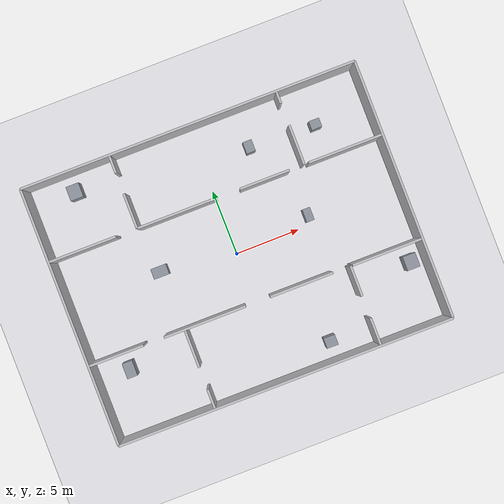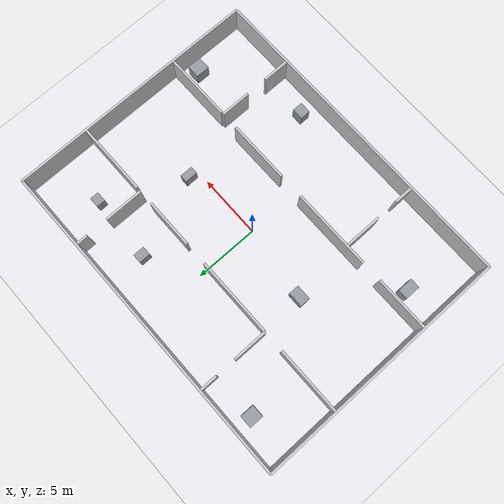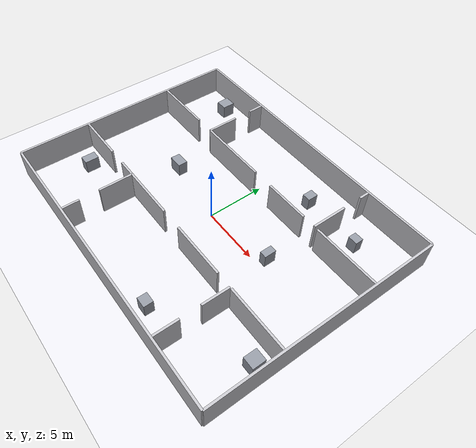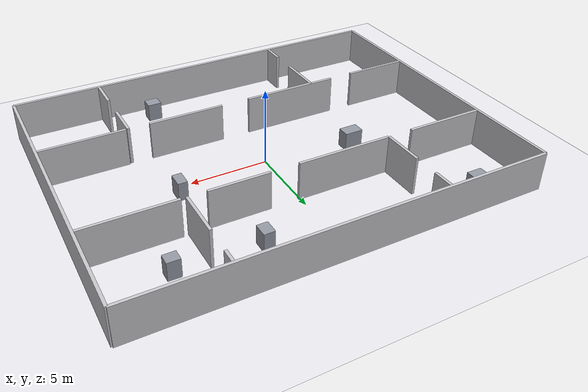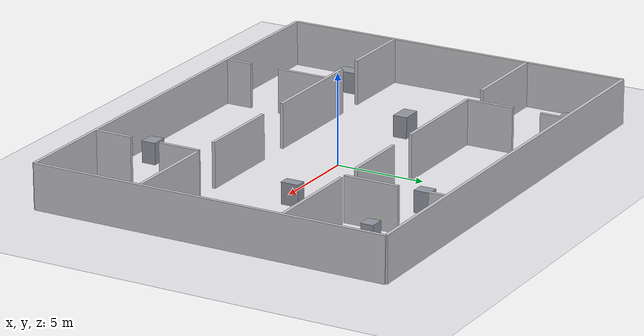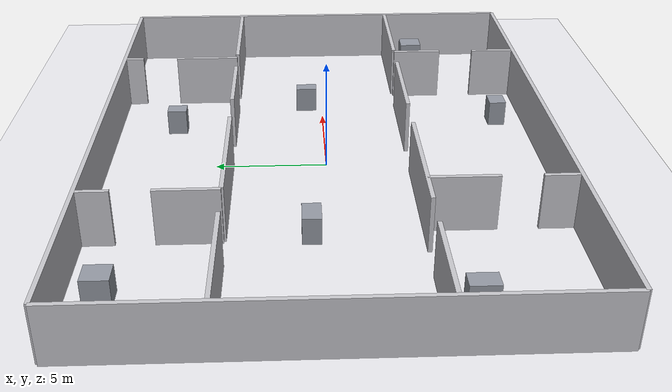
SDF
<?xml version="1.0"?>
<sdf version="1.9"><world name="new_room_world">
<plugin filename="gz-sim-physics-system" name="gz::sim::systems::Physics"/><plugin filename="gz-sim-user-commands-system" name="gz::sim::systems::UserCommands"/><plugin filename="gz-sim-scene-broadcaster-system" name="gz::sim::systems::SceneBroadcaster"/><plugin filename="gz-sim-sensors-system" name="gz::sim::systems::Sensors"><render_engine>ogre2</render_engine></plugin><plugin filename="gz-sim-imu-system" name="gz::sim::systems::Imu"/>
<physics name="new_room_realtime" type="ignored"><max_step_size>0.001</max_step_size><real_time_factor>1</real_time_factor></physics><gravity>0 0 -9.8</gravity><scene><ambient>0.85 0.85 0.87 1</ambient><background>0.68 0.68 0.71 1</background><shadows>false</shadows></scene><light name="sun" type="directional"><cast_shadows>false</cast_shadows><pose>0 0 10 0 0 0</pose><diffuse>0.95 0.95 0.95 1</diffuse><direction>-0.3 0.2 -1</direction></light>
<model name="new_room_ground"><static>true</static><link name="ground_link"><collision name="ground_collision"><geometry><plane><normal>0 0 1</normal><size>40 32</size></plane></geometry></collision><visual name="ground_visual"><geometry><plane><normal>0 0 1</normal><size>40 32</size></plane></geometry><material><ambient>0.92 0.92 0.94 1</ambient><diffuse>0.92 0.92 0.94 1</diffuse></material></visual></link></model>
<model name="mini_hospital_structure"><static>true</static><link name="structure">
<collision name="mx048_c000"><pose>0 10 1.25 0 0 0</pose><geometry><box><size>26 0.18 2.5</size></box></geometry></collision><visual name="mx048_v000"><pose>0 10 1.25 0 0 0</pose><geometry><box><size>26 0.18 2.5</size></box></geometry><material><ambient>0.78 0.78 0.80 1</ambient><diffuse>0.78 0.78 0.80 1</diffuse></material></visual>
<collision name="mx048_c001"><pose>0 -10 1.25 0 0 0</pose><geometry><box><size>26 0.18 2.5</size></box></geometry></collision><visual name="mx048_v001"><pose>0 -10 1.25 0 0 0</pose><geometry><box><size>26 0.18 2.5</size></box></geometry><material><ambient>0.78 0.78 0.80 1</ambient><diffuse>0.78 0.78 0.80 1</diffuse></material></visual>
<collision name="mx048_c002"><pose>-13 0 1.25 0 0 0</pose><geometry><box><size>0.18 20 2.5</size></box></geometry></collision><visual name="mx048_v002"><pose>-13 0 1.25 0 0 0</pose><geometry><box><size>0.18 20 2.5</size></box></geometry><material><ambient>0.78 0.78 0.80 1</ambient><diffuse>0.78 0.78 0.80 1</diffuse></material></visual>
<collision name="mx048_c003"><pose>13 0 1.25 0 0 0</pose><geometry><box><size>0.18 20 2.5</size></box></geometry></collision><visual name="mx048_v003"><pose>13 0 1.25 0 0 0</pose><geometry><box><size>0.18 20 2.5</size></box></geometry><material><ambient>0.78 0.78 0.80 1</ambient><diffuse>0.78 0.78 0.80 1</diffuse></material></visual>
<collision name="mx048_c004"><pose>-10.33 4.3 1.25 0 0 0</pose><geometry><box><size>5.16 0.18 2.5</size></box></geometry></collision><visual name="mx048_v004"><pose>-10.33 4.3 1.25 0 0 0</pose><geometry><box><size>5.16 0.18 2.5</size></box></geometry><material><ambient>0.78 0.78 0.80 1</ambient><diffuse>0.78 0.78 0.80 1</diffuse></material></visual>
<collision name="mx048_c005"><pose>-2.975 4.3 1.25 0 0 0</pose><geometry><box><size>6.15 0.18 2.5</size></box></geometry></collision><visual name="mx048_v005"><pose>-2.975 4.3 1.25 0 0 0</pose><geometry><box><size>6.15 0.18 2.5</size></box></geometry><material><ambient>0.78 0.78 0.80 1</ambient><diffuse>0.78 0.78 0.80 1</diffuse></material></visual>
<collision name="mx048_c006"><pose>3.825 4.3 1.25 0 0 0</pose><geometry><box><size>3.85 0.18 2.5</size></box></geometry></collision><visual name="mx048_v006"><pose>3.825 4.3 1.25 0 0 0</pose><geometry><box><size>3.85 0.18 2.5</size></box></geometry><material><ambient>0.78 0.78 0.80 1</ambient><diffuse>0.78 0.78 0.80 1</diffuse></material></visual>
<collision name="mx048_c007"><pose>10.08 4.3 1.25 0 0 0</pose><geometry><box><size>5.66 0.18 2.5</size></box></geometry></collision><visual name="mx048_v007"><pose>10.08 4.3 1.25 0 0 0</pose><geometry><box><size>5.66 0.18 2.5</size></box></geometry><material><ambient>0.78 0.78 0.80 1</ambient><diffuse>0.78 0.78 0.80 1</diffuse></material></visual>
<collision name="mx048_c008"><pose>-10.805 -3.8 1.25 0 0 0</pose><geometry><box><size>4.21 0.18 2.5</size></box></geometry></collision><visual name="mx048_v008"><pose>-10.805 -3.8 1.25 0 0 0</pose><geometry><box><size>4.21 0.18 2.5</size></box></geometry><material><ambient>0.78 0.78 0.80 1</ambient><diffuse>0.78 0.78 0.80 1</diffuse></material></visual>
<collision name="mx048_c009"><pose>-3.925 -3.8 1.25 0 0 0</pose><geometry><box><size>6.35 0.18 2.5</size></box></geometry></collision><visual name="mx048_v009"><pose>-3.925 -3.8 1.25 0 0 0</pose><geometry><box><size>6.35 0.18 2.5</size></box></geometry><material><ambient>0.78 0.78 0.80 1</ambient><diffuse>0.78 0.78 0.80 1</diffuse></material></visual>
<collision name="mx048_c010"><pose>3.6 -3.8 1.25 0 0 0</pose><geometry><box><size>4.9 0.18 2.5</size></box></geometry></collision><visual name="mx048_v010"><pose>3.6 -3.8 1.25 0 0 0</pose><geometry><box><size>4.9 0.18 2.5</size></box></geometry><material><ambient>0.78 0.78 0.80 1</ambient><diffuse>0.78 0.78 0.80 1</diffuse></material></visual>
<collision name="mx048_c011"><pose>10.23 -3.8 1.25 0 0 0</pose><geometry><box><size>5.36 0.18 2.5</size></box></geometry></collision><visual name="mx048_v011"><pose>10.23 -3.8 1.25 0 0 0</pose><geometry><box><size>5.36 0.18 2.5</size></box></geometry><material><ambient>0.78 0.78 0.80 1</ambient><diffuse>0.78 0.78 0.80 1</diffuse></material></visual>
<collision name="mx048_c012"><pose>-6.1 5.65 1.25 0 0 0</pose><geometry><box><size>0.18 2.7 2.5</size></box></geometry></collision><visual name="mx048_v012"><pose>-6.1 5.65 1.25 0 0 0</pose><geometry><box><size>0.18 2.7 2.5</size></box></geometry><material><ambient>0.78 0.78 0.80 1</ambient><diffuse>0.78 0.78 0.80 1</diffuse></material></visual>
<collision name="mx048_c013"><pose>-6.1 9.255 1.25 0 0 0</pose><geometry><box><size>0.18 1.31 2.5</size></box></geometry></collision><visual name="mx048_v013"><pose>-6.1 9.255 1.25 0 0 0</pose><geometry><box><size>0.18 1.31 2.5</size></box></geometry><material><ambient>0.78 0.78 0.80 1</ambient><diffuse>0.78 0.78 0.80 1</diffuse></material></visual>
<collision name="mx048_c014"><pose>6.9 5.825 1.25 0 0 0</pose><geometry><box><size>0.18 3.05 2.5</size></box></geometry></collision><visual name="mx048_v014"><pose>6.9 5.825 1.25 0 0 0</pose><geometry><box><size>0.18 3.05 2.5</size></box></geometry><material><ambient>0.78 0.78 0.80 1</ambient><diffuse>0.78 0.78 0.80 1</diffuse></material></visual>
<collision name="mx048_c015"><pose>6.9 9.48 1.25 0 0 0</pose><geometry><box><size>0.18 0.86 2.5</size></box></geometry></collision><visual name="mx048_v015"><pose>6.9 9.48 1.25 0 0 0</pose><geometry><box><size>0.18 0.86 2.5</size></box></geometry><material><ambient>0.78 0.78 0.80 1</ambient><diffuse>0.78 0.78 0.80 1</diffuse></material></visual>
<collision name="mx048_c016"><pose>-5.5 -9.18 1.25 0 0 0</pose><geometry><box><size>0.18 1.46 2.5</size></box></geometry></collision><visual name="mx048_v016"><pose>-5.5 -9.18 1.25 0 0 0</pose><geometry><box><size>0.18 1.46 2.5</size></box></geometry><material><ambient>0.78 0.78 0.80 1</ambient><diffuse>0.78 0.78 0.80 1</diffuse></material></visual>
<collision name="mx048_c017"><pose>-5.5 -5.275 1.25 0 0 0</pose><geometry><box><size>0.18 2.95 2.5</size></box></geometry></collision><visual name="mx048_v017"><pose>-5.5 -5.275 1.25 0 0 0</pose><geometry><box><size>0.18 2.95 2.5</size></box></geometry><material><ambient>0.78 0.78 0.80 1</ambient><diffuse>0.78 0.78 0.80 1</diffuse></material></visual>
<collision name="mx048_c018"><pose>7.4 -8.88 1.25 0 0 0</pose><geometry><box><size>0.18 2.06 2.5</size></box></geometry></collision><visual name="mx048_v018"><pose>7.4 -8.88 1.25 0 0 0</pose><geometry><box><size>0.18 2.06 2.5</size></box></geometry><material><ambient>0.78 0.78 0.80 1</ambient><diffuse>0.78 0.78 0.80 1</diffuse></material></visual>
<collision name="mx048_c019"><pose>7.4 -4.975 1.25 0 0 0</pose><geometry><box><size>0.18 2.35 2.5</size></box></geometry></collision><visual name="mx048_v019"><pose>7.4 -4.975 1.25 0 0 0</pose><geometry><box><size>0.18 2.35 2.5</size></box></geometry><material><ambient>0.78 0.78 0.80 1</ambient><diffuse>0.78 0.78 0.80 1</diffuse></material></visual>
<collision name="mx048_c020"><pose>-9.6 8.6 0.6 0 0 0</pose><geometry><box><size>1 1.1 1.2</size></box></geometry></collision><visual name="mx048_v020"><pose>-9.6 8.6 0.6 0 0 0</pose><geometry><box><size>1 1.1 1.2</size></box></geometry><material><ambient>0.58 0.60 0.64 1</ambient><diffuse>0.58 0.60 0.64 1</diffuse></material></visual>
<collision name="mx048_c021"><pose>3.7 7.1 0.6 0 0 0</pose><geometry><box><size>0.7 0.9 1.2</size></box></geometry></collision><visual name="mx048_v021"><pose>3.7 7.1 0.6 0 0 0</pose><geometry><box><size>0.7 0.9 1.2</size></box></geometry><material><ambient>0.58 0.60 0.64 1</ambient><diffuse>0.58 0.60 0.64 1</diffuse></material></visual>
<collision name="mx048_c022"><pose>8.9 6.9 0.6 0 0 0</pose><geometry><box><size>0.8 0.7 1.2</size></box></geometry></collision><visual name="mx048_v022"><pose>8.9 6.9 0.6 0 0 0</pose><geometry><box><size>0.8 0.7 1.2</size></box></geometry><material><ambient>0.58 0.60 0.64 1</ambient><diffuse>0.58 0.60 0.64 1</diffuse></material></visual>
<collision name="mx048_c023"><pose>-10.5 -5.2 0.6 0 0 0</pose><geometry><box><size>0.8 1.2 1.2</size></box></geometry></collision><visual name="mx048_v023"><pose>-10.5 -5.2 0.6 0 0 0</pose><geometry><box><size>0.8 1.2 1.2</size></box></geometry><material><ambient>0.58 0.60 0.64 1</ambient><diffuse>0.58 0.60 0.64 1</diffuse></material></visual>
<collision name="mx048_c024"><pose>4.2 -8.6 0.6 0 0 0</pose><geometry><box><size>0.9 0.8 1.2</size></box></geometry></collision><visual name="mx048_v024"><pose>4.2 -8.6 0.6 0 0 0</pose><geometry><box><size>0.9 0.8 1.2</size></box></geometry><material><ambient>0.58 0.60 0.64 1</ambient><diffuse>0.58 0.60 0.64 1</diffuse></material></visual>
<collision name="mx048_c025"><pose>11.9 -5.2 0.6 0 0 0</pose><geometry><box><size>1 1.1 1.2</size></box></geometry></collision><visual name="mx048_v025"><pose>11.9 -5.2 0.6 0 0 0</pose><geometry><box><size>1 1.1 1.2</size></box></geometry><material><ambient>0.58 0.60 0.64 1</ambient><diffuse>0.58 0.60 0.64 1</diffuse></material></visual>
<collision name="mx048_c026"><pose>-5.8 0.8 0.6 0 0 0</pose><geometry><box><size>1.2 0.8 1.2</size></box></geometry></collision><visual name="mx048_v026"><pose>-5.8 0.8 0.6 0 0 0</pose><geometry><box><size>1.2 0.8 1.2</size></box></geometry><material><ambient>0.58 0.60 0.64 1</ambient><diffuse>0.58 0.60 0.64 1</diffuse></material></visual>
<collision name="mx048_c027"><pose>6 0.8 0.6 0 0 0</pose><geometry><box><size>0.6 1 1.2</size></box></geometry></collision><visual name="mx048_v027"><pose>6 0.8 0.6 0 0 0</pose><geometry><box><size>0.6 1 1.2</size></box></geometry><material><ambient>0.58 0.60 0.64 1</ambient><diffuse>0.58 0.60 0.64 1</diffuse></material></visual>
</link></model></world></sdf>
